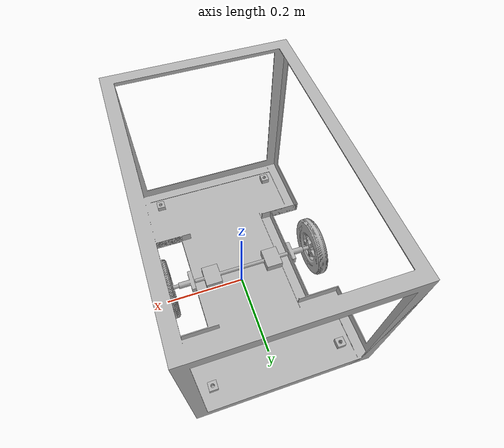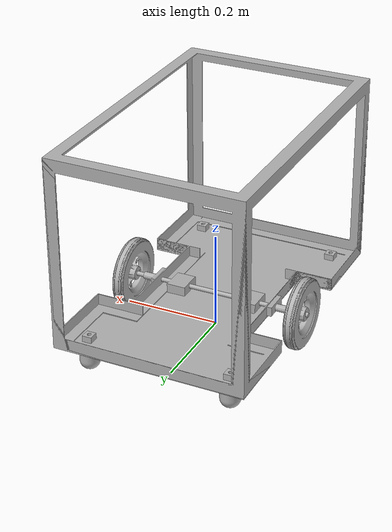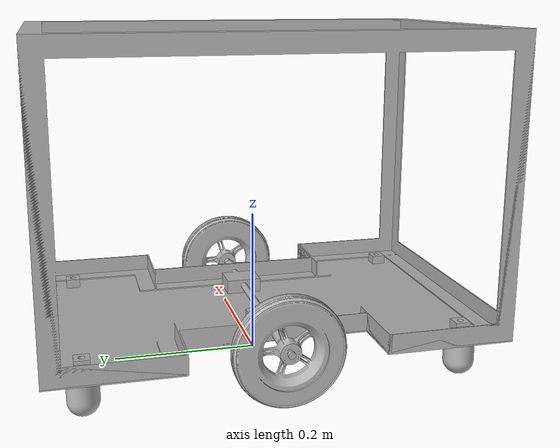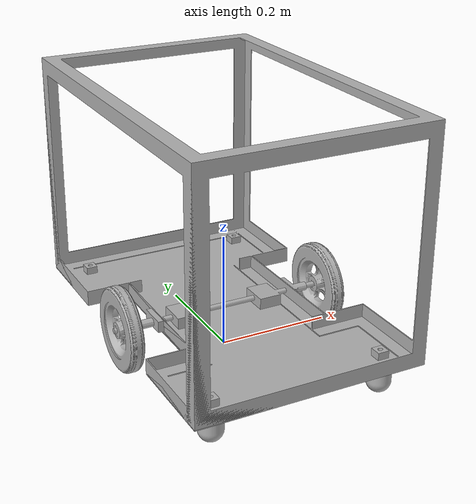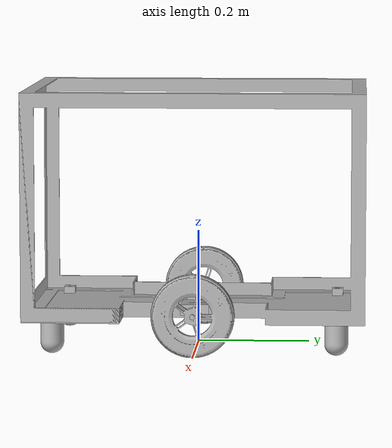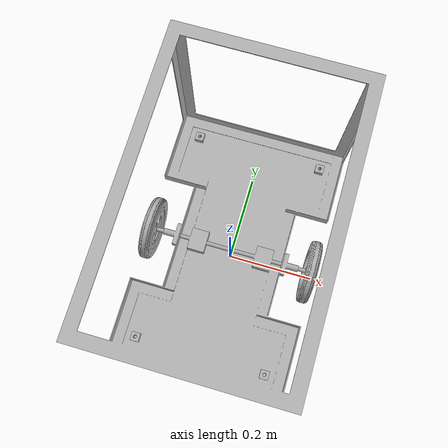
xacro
<?xml version="1.0" ?>
<robot name="centaur2" xmlns:xacro="http://www.ros.org/wiki/xacro">

<xacro:include filename="$(find centaur2_description)/urdf/materials.xacro" />
<xacro:include filename="$(find centaur2_description)/urdf/centaur2.trans" />
<xacro:include filename="$(find centaur2_description)/urdf/centaur2.gazebo" />
<link name="base_link">
  <inertial>
    <origin rpy="0 0 0" xyz="-5.0902174876003435e-06 -3.071086506139217e-07 0.061"/>
    <mass value="3.1566880672959843"/>
    <inertia ixx="0.109551" ixy="2e-06" ixz="0.0" iyy="0.033937" iyz="-0.0" izz="0.143485"/>
  </inertial>
  <visual>
    <origin rpy="0 0 0" xyz="0 0 0"/>
    <geometry>
      <mesh filename="package://centaur2_description/meshes/base_link.stl" scale="0.001 0.001 0.001"/>
    </geometry>
    <material name="silver"/>
  </visual>
  <collision>
    <origin rpy="0 0 0" xyz="0 0 0"/>
    <geometry>
      <mesh filename="package://centaur2_description/meshes/base_link.stl" scale="0.001 0.001 0.001"/>
    </geometry>
  </collision>
</link>

<link name="Frame_1">
  <inertial>
    <origin rpy="0 0 0" xyz="-0.17459999999999457 0.15239999999999432 0.24767505978023951"/>
    <mass value="4.323917657600147"/>
    <inertia ixx="0.381877" ixy="0.0" ixz="0.0" iyy="0.249814" iyz="0.0" izz="0.368988"/>
  </inertial>
  <visual>
    <origin rpy="0 0 0" xyz="-0.1746 0.1524 -0.002"/>
    <geometry>
      <mesh filename="package://centaur2_description/meshes/Frame_1.stl" scale="0.001 0.001 0.001"/>
    </geometry>
    <material name="silver"/>
  </visual>
  <collision>
    <origin rpy="0 0 0" xyz="-0.1746 0.1524 -0.002"/>
    <geometry>
      <mesh filename="package://centaur2_description/meshes/Frame_1.stl" scale="0.001 0.001 0.001"/>
    </geometry>
  </collision>
</link>

<link name="wheel_Lock__1___1___1__1">
  <inertial>
    <origin rpy="0 0 0" xyz="2.6047542733831364e-09 -4.341134701713045e-09 -0.0034999999999999892"/>
    <mass value="0.0350291722005078"/>
    <inertia ixx="2e-06" ixy="0.0" ixz="0.0" iyy="2e-06" iyz="0.0" izz="3e-06"/>
  </inertial>
  <visual>
    <origin rpy="0 0 0" xyz="0.15 -0.25 -0.072"/>
    <geometry>
      <mesh filename="package://centaur2_description/meshes/wheel_Lock__1___1___1__1.stl" scale="0.001 0.001 0.001"/>
    </geometry>
    <material name="silver"/>
  </visual>
  <collision>
    <origin rpy="0 0 0" xyz="0.15 -0.25 -0.072"/>
    <geometry>
      <mesh filename="package://centaur2_description/meshes/wheel_Lock__1___1___1__1.stl" scale="0.001 0.001 0.001"/>
    </geometry>
  </collision>
</link>

<link name="wheel_Lock__1___1__1">
  <inertial>
    <origin rpy="0 0 0" xyz="2.604754301138712e-09 -4.341134701713045e-09 -0.0034999999999999892"/>
    <mass value="0.0350291722005078"/>
    <inertia ixx="2e-06" ixy="0.0" ixz="0.0" iyy="2e-06" iyz="0.0" izz="3e-06"/>
  </inertial>
  <visual>
    <origin rpy="0 0 0" xyz="-0.15 -0.25 -0.072"/>
    <geometry>
      <mesh filename="package://centaur2_description/meshes/wheel_Lock__1___1__1.stl" scale="0.001 0.001 0.001"/>
    </geometry>
    <material name="silver"/>
  </visual>
  <collision>
    <origin rpy="0 0 0" xyz="-0.15 -0.25 -0.072"/>
    <geometry>
      <mesh filename="package://centaur2_description/meshes/wheel_Lock__1___1__1.stl" scale="0.001 0.001 0.001"/>
    </geometry>
  </collision>
</link>

<link name="wheel_Lock__1__1">
  <inertial>
    <origin rpy="0 0 0" xyz="2.6047542733831364e-09 -4.341134729468621e-09 -0.0034999999999999892"/>
    <mass value="0.0350291722005078"/>
    <inertia ixx="2e-06" ixy="-0.0" ixz="0.0" iyy="2e-06" iyz="-0.0" izz="3e-06"/>
  </inertial>
  <visual>
    <origin rpy="0 0 0" xyz="0.15 0.25 -0.072"/>
    <geometry>
      <mesh filename="package://centaur2_description/meshes/wheel_Lock__1__1.stl" scale="0.001 0.001 0.001"/>
    </geometry>
    <material name="silver"/>
  </visual>
  <collision>
    <origin rpy="0 0 0" xyz="0.15 0.25 -0.072"/>
    <geometry>
      <mesh filename="package://centaur2_description/meshes/wheel_Lock__1__1.stl" scale="0.001 0.001 0.001"/>
    </geometry>
  </collision>
</link>

<link name="wheel_Lock_1">
  <inertial>
    <origin rpy="0 0 0" xyz="2.604754301138712e-09 -4.341134729468621e-09 -0.0034999999999999892"/>
    <mass value="0.0350291722005078"/>
    <inertia ixx="2e-06" ixy="-0.0" ixz="0.0" iyy="2e-06" iyz="-0.0" izz="3e-06"/>
  </inertial>
  <visual>
    <origin rpy="0 0 0" xyz="-0.15 0.25 -0.072"/>
    <geometry>
      <mesh filename="package://centaur2_description/meshes/wheel_Lock_1.stl" scale="0.001 0.001 0.001"/>
    </geometry>
    <material name="silver"/>
  </visual>
  <collision>
    <origin rpy="0 0 0" xyz="-0.15 0.25 -0.072"/>
    <geometry>
      <mesh filename="package://centaur2_description/meshes/wheel_Lock_1.stl" scale="0.001 0.001 0.001"/>
    </geometry>
  </collision>
</link>

<link name="falseCaster_1">
  <inertial>
    <origin rpy="0 0 0" xyz="-5.551115123125783e-17 5.551115123125783e-17 -0.036944766188335865"/>
    <mass value="0.558921991463318"/>
    <inertia ixx="0.000195" ixy="-0.0" ixz="-0.0" iyy="0.000195" iyz="0.0" izz="0.000113"/>
  </inertial>
  <visual>
    <origin rpy="0 0 0" xyz="0.15 -0.25 -0.07"/>
    <geometry>
      <mesh filename="package://centaur2_description/meshes/falseCaster_1.stl" scale="0.001 0.001 0.001"/>
    </geometry>
    <material name="silver"/>
  </visual>
  <collision>
    <origin rpy="0 0 0" xyz="0.15 -0.25 -0.07"/>
    <geometry>
      <mesh filename="package://centaur2_description/meshes/falseCaster_1.stl" scale="0.001 0.001 0.001"/>
    </geometry>
  </collision>
</link>

<link name="falseCaster__1__1">
  <inertial>
    <origin rpy="0 0 0" xyz="5.551115123125783e-17 0.0 -0.036944766188335885"/>
    <mass value="0.558921991463318"/>
    <inertia ixx="0.000195" ixy="0.0" ixz="0.0" iyy="0.000195" iyz="-0.0" izz="0.000113"/>
  </inertial>
  <visual>
    <origin rpy="0 0 0" xyz="-0.15 -0.25 -0.07"/>
    <geometry>
      <mesh filename="package://centaur2_description/meshes/falseCaster__1__1.stl" scale="0.001 0.001 0.001"/>
    </geometry>
    <material name="silver"/>
  </visual>
  <collision>
    <origin rpy="0 0 0" xyz="-0.15 -0.25 -0.07"/>
    <geometry>
      <mesh filename="package://centaur2_description/meshes/falseCaster__1__1.stl" scale="0.001 0.001 0.001"/>
    </geometry>
  </collision>
</link>

<link name="falseCaster__1___1__1">
  <inertial>
    <origin rpy="0 0 0" xyz="-5.551115123125783e-17 0.0 -0.036944766188335865"/>
    <mass value="0.558921991463318"/>
    <inertia ixx="0.000195" ixy="0.0" ixz="-0.0" iyy="0.000195" iyz="-0.0" izz="0.000113"/>
  </inertial>
  <visual>
    <origin rpy="0 0 0" xyz="0.15 0.25 -0.07"/>
    <geometry>
      <mesh filename="package://centaur2_description/meshes/falseCaster__1___1__1.stl" scale="0.001 0.001 0.001"/>
    </geometry>
    <material name="silver"/>
  </visual>
  <collision>
    <origin rpy="0 0 0" xyz="0.15 0.25 -0.07"/>
    <geometry>
      <mesh filename="package://centaur2_description/meshes/falseCaster__1___1__1.stl" scale="0.001 0.001 0.001"/>
    </geometry>
  </collision>
</link>

<link name="falseCaster__1___1___1__1">
  <inertial>
    <origin rpy="0 0 0" xyz="5.551115123125783e-17 2.7755575615628914e-17 -0.036944766188335885"/>
    <mass value="0.558921991463318"/>
    <inertia ixx="0.000195" ixy="0.0" ixz="0.0" iyy="0.000195" iyz="0.0" izz="0.000113"/>
  </inertial>
  <visual>
    <origin rpy="0 0 0" xyz="-0.15 0.25 -0.07"/>
    <geometry>
      <mesh filename="package://centaur2_description/meshes/falseCaster__1___1___1__1.stl" scale="0.001 0.001 0.001"/>
    </geometry>
    <material name="silver"/>
  </visual>
  <collision>
    <origin rpy="0 0 0" xyz="-0.15 0.25 -0.07"/>
    <geometry>
      <mesh filename="package://centaur2_description/meshes/falseCaster__1___1___1__1.stl" scale="0.001 0.001 0.001"/>
    </geometry>
  </collision>
</link>

<link name="wheelShaft_1">
  <inertial>
    <origin rpy="0 0 0" xyz="0.07802595773901487 -5.542764220350314e-18 -0.18972942904550422"/>
    <mass value="0.8050510906075322"/>
    <inertia ixx="0.000154" ixy="-0.0" ixz="-0.0" iyy="0.006671" iyz="0.0" izz="0.006781"/>
  </inertial>
  <visual>
    <origin rpy="0 0 0" xyz="0.078 -0.0 -0.262"/>
    <geometry>
      <mesh filename="package://centaur2_description/meshes/wheelShaft_1.stl" scale="0.001 0.001 0.001"/>
    </geometry>
    <material name="silver"/>
  </visual>
  <collision>
    <origin rpy="0 0 0" xyz="0.078 -0.0 -0.262"/>
    <geometry>
      <mesh filename="package://centaur2_description/meshes/wheelShaft_1.stl" scale="0.001 0.001 0.001"/>
    </geometry>
  </collision>
</link>

<link name="AERO-FLEX_WHEEL_v1_1">
  <inertial>
    <origin rpy="0 0 0" xyz="0.18838357048487236 -1.9664923038311857e-06 0.06390320249033342"/>
    <mass value="2.253848480624703"/>
    <inertia ixx="0.00732" ixy="0.0" ixz="0.0" iyy="0.003764" iyz="0.0" izz="0.003764"/>
  </inertial>
  <visual>
    <origin rpy="0 0 0" xyz="-0.0 -0.0 -0.009325"/>
    <geometry>
      <mesh filename="package://centaur2_description/meshes/AERO-FLEX_WHEEL_v1_1.stl" scale="0.001 0.001 0.001"/>
    </geometry>
    <material name="silver"/>
  </visual>
  <collision>
    <origin rpy="0 0 0" xyz="-0.0 -0.0 -0.009325"/>
    <geometry>
      <mesh filename="package://centaur2_description/meshes/AERO-FLEX_WHEEL_v1_1.stl" scale="0.001 0.001 0.001"/>
    </geometry>
  </collision>
</link>

<link name="AERO-FLEX_WHEEL_v1__1__1">
  <inertial>
    <origin rpy="0 0 0" xyz="-0.18796642951512765 -1.9664923038311835e-06 0.08255320249033389"/>
    <mass value="2.253848480624703"/>
    <inertia ixx="0.00732" ixy="0.0" ixz="0.0" iyy="0.003764" iyz="0.0" izz="0.003764"/>
  </inertial>
  <visual>
    <origin rpy="0 0 0" xyz="0.0 0.0 0.009325"/>
    <geometry>
      <mesh filename="package://centaur2_description/meshes/AERO-FLEX_WHEEL_v1__1__1.stl" scale="0.001 0.001 0.001"/>
    </geometry>
    <material name="silver"/>
  </visual>
  <collision>
    <origin rpy="0 0 0" xyz="0.0 0.0 0.009325"/>
    <geometry>
      <mesh filename="package://centaur2_description/meshes/AERO-FLEX_WHEEL_v1__1__1.stl" scale="0.001 0.001 0.001"/>
    </geometry>
  </collision>
</link>

<joint name="Rigid2" type="fixed">
  <origin rpy="0 0 0" xyz="0.1746 -0.1524 0.002"/>
  <parent link="base_link"/>
  <child link="Frame_1"/>
</joint>

<joint name="Rigid8" type="fixed">
  <origin rpy="0 0 0" xyz="-0.15 0.25 0.072"/>
  <parent link="base_link"/>
  <child link="wheel_Lock__1___1___1__1"/>
</joint>

<joint name="Rigid9" type="fixed">
  <origin rpy="0 0 0" xyz="0.15 0.25 0.072"/>
  <parent link="base_link"/>
  <child link="wheel_Lock__1___1__1"/>
</joint>

<joint name="Rigid10" type="fixed">
  <origin rpy="0 0 0" xyz="-0.15 -0.25 0.072"/>
  <parent link="base_link"/>
  <child link="wheel_Lock__1__1"/>
</joint>

<joint name="Rigid11" type="fixed">
  <origin rpy="0 0 0" xyz="0.15 -0.25 0.072"/>
  <parent link="base_link"/>
  <child link="wheel_Lock_1"/>
</joint>

<joint name="Rigid15" type="fixed">
  <origin rpy="0 0 0" xyz="-0.15 0.25 0.07"/>
  <parent link="base_link"/>
  <child link="falseCaster_1"/>
</joint>

<joint name="Rigid16" type="fixed">
  <origin rpy="0 0 0" xyz="0.15 0.25 0.07"/>
  <parent link="base_link"/>
  <child link="falseCaster__1__1"/>
</joint>

<joint name="Rigid17" type="fixed">
  <origin rpy="0 0 0" xyz="-0.15 -0.25 0.07"/>
  <parent link="base_link"/>
  <child link="falseCaster__1___1__1"/>
</joint>

<joint name="Rigid18" type="fixed">
  <origin rpy="0 0 0" xyz="0.15 -0.25 0.07"/>
  <parent link="base_link"/>
  <child link="falseCaster__1___1___1__1"/>
</joint>

<joint name="Rigid21" type="fixed">
  <origin rpy="0 0 0" xyz="-0.078 0.0 0.262"/>
  <parent link="base_link"/>
  <child link="wheelShaft_1"/>
</joint>

<joint name="Rev22" type="continuous">
  <origin rpy="0 0 0" xyz="0.078 0.0 -0.252675"/>
  <parent link="wheelShaft_1"/>
  <child link="AERO-FLEX_WHEEL_v1_1"/>
  <axis xyz="1.0 -0.0 0.0"/>
</joint>

<joint name="Rev23" type="continuous">
  <origin rpy="0 0 0" xyz="0.078 -0.0 -0.271325"/>
  <parent link="wheelShaft_1"/>
  <child link="AERO-FLEX_WHEEL_v1__1__1"/>
  <axis xyz="-1.0 -0.0 0.0"/>
</joint>

</robot>

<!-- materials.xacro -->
<robot name="sentry" xmlns:xacro="http://www.ros.org/wiki/xacro" >

<material name="silver">
  <color rgba="0.700 0.700 0.700 1.000"/>
</material>

</robot>

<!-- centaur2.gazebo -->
<robot name="centaur2" xmlns:xacro="http://www.ros.org/wiki/xacro" >

<xacro:property name="body_color" value="Gazebo/Silver" />

<gazebo>
  <plugin filename="libgazebo_ros_control.so" name="gazebo_ros_control"/>
    <commandTopic>cmd_vel</commandTopic>
</gazebo>

<gazebo reference="base_link">
  <material>${body_color}</material>
  <mu1>0.2</mu1>
  <mu2>0.2</mu2>
  <selfCollide>true</selfCollide>
  <gravity>true</gravity>
</gazebo>

<gazebo reference="Frame_1">
  <material>${body_color}</material>
  <mu1>0.2</mu1>
  <mu2>0.2</mu2>
  <selfCollide>true</selfCollide>
</gazebo>

<gazebo reference="wheel_Lock__1___1___1__1">
  <material>${body_color}</material>
  <mu1>0.2</mu1>
  <mu2>0.2</mu2>
  <selfCollide>true</selfCollide>
</gazebo>

<gazebo reference="wheel_Lock__1___1__1">
  <material>${body_color}</material>
  <mu1>0.2</mu1>
  <mu2>0.2</mu2>
  <selfCollide>true</selfCollide>
</gazebo>

<gazebo reference="wheel_Lock__1__1">
  <material>${body_color}</material>
  <mu1>0.2</mu1>
  <mu2>0.2</mu2>
  <selfCollide>true</selfCollide>
</gazebo>

<gazebo reference="wheel_Lock_1">
  <material>${body_color}</material>
  <mu1>0.2</mu1>
  <mu2>0.2</mu2>
  <selfCollide>true</selfCollide>
</gazebo>

<gazebo reference="falseCaster_1">
  <material>${body_color}</material>
  <mu1>0.2</mu1>
  <mu2>0.2</mu2>
  <selfCollide>true</selfCollide>
</gazebo>

<gazebo reference="falseCaster__1__1">
  <material>${body_color}</material>
  <mu1>0.2</mu1>
  <mu2>0.2</mu2>
  <selfCollide>true</selfCollide>
</gazebo>

<gazebo reference="falseCaster__1___1__1">
  <material>${body_color}</material>
  <mu1>0.2</mu1>
  <mu2>0.2</mu2>
  <selfCollide>true</selfCollide>
</gazebo>

<gazebo reference="falseCaster__1___1___1__1">
  <material>${body_color}</material>
  <mu1>0.2</mu1>
  <mu2>0.2</mu2>
  <selfCollide>true</selfCollide>
</gazebo>

<gazebo reference="wheelShaft_1">
  <material>${body_color}</material>
  <mu1>0.2</mu1>
  <mu2>0.2</mu2>
  <selfCollide>true</selfCollide>
</gazebo>

<gazebo reference="AERO-FLEX_WHEEL_v1_1">
  <material>${body_color}</material>
  <mu1>0.2</mu1>
  <mu2>0.2</mu2>
  <selfCollide>true</selfCollide>
</gazebo>

<gazebo reference="AERO-FLEX_WHEEL_v1__1__1">
  <material>${body_color}</material>
  <mu1>0.2</mu1>
  <mu2>0.2</mu2>
  <selfCollide>true</selfCollide>
</gazebo>

</robot>
